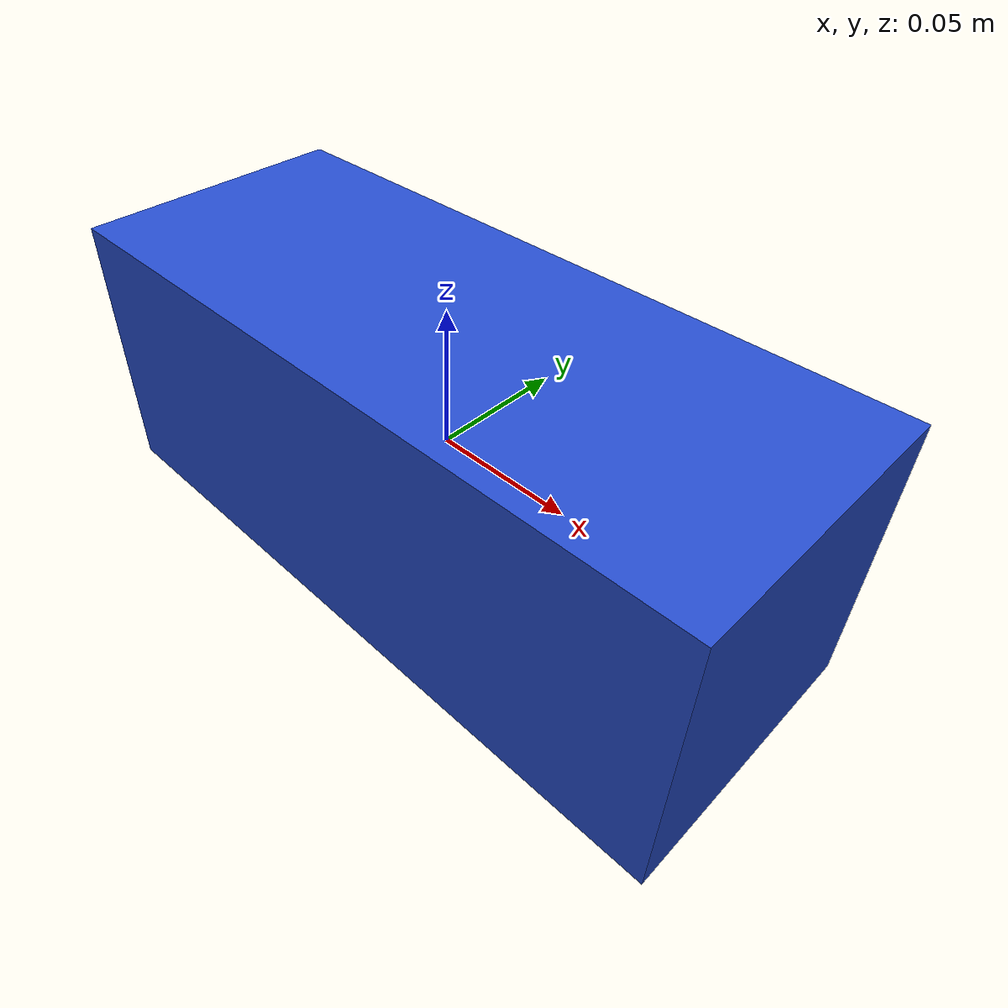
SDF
<?xml version="1.0" encoding="UTF-8"?>

<sdf version="1.4">
  <model name="camera_model">
    <static>true</static>
    <link name="camera_link">
      <inertial>
        <mass>0.1</mass>
      </inertial>
      <visual name="camera_visual">
        <geometry>
          <box>
            <size>0.25 0.1 0.1</size>
          </box>
        </geometry>
        <material>
          <script>
            <uri>file://media/materials/scripts/kitchen.material</uri>
            <name>Gazebo/Blue</name>
          </script>
        </material>
      </visual>
    <sensor type="camera" name="camera">
      <update_rate>30.0</update_rate>
      <camera name="head">
        <horizontal_fov>1.3</horizontal_fov>
        <image>
          <width>640</width>
          <height>480</height>
        </image>
        <clip>
          <near>0.1</near>
          <far>30</far>
        </clip>
        <noise>
          <type>gaussian</type>
          <mean>0.0</mean>
          <stddev>0.007</stddev>
        </noise>
      </camera>
      <plugin name="camera_controller" filename="libgazebo_ros_camera.so">
        <alwaysOn>true</alwaysOn>
        <updateRate>30.0</updateRate>
        <cameraName>camera</cameraName>
        <imageTopicName>image</imageTopicName>
        <frameName>camera_link</frameName>
        <hackBaseline>0.07</hackBaseline>
      </plugin>
    </sensor>
    </link>
  </model>
</sdf>
